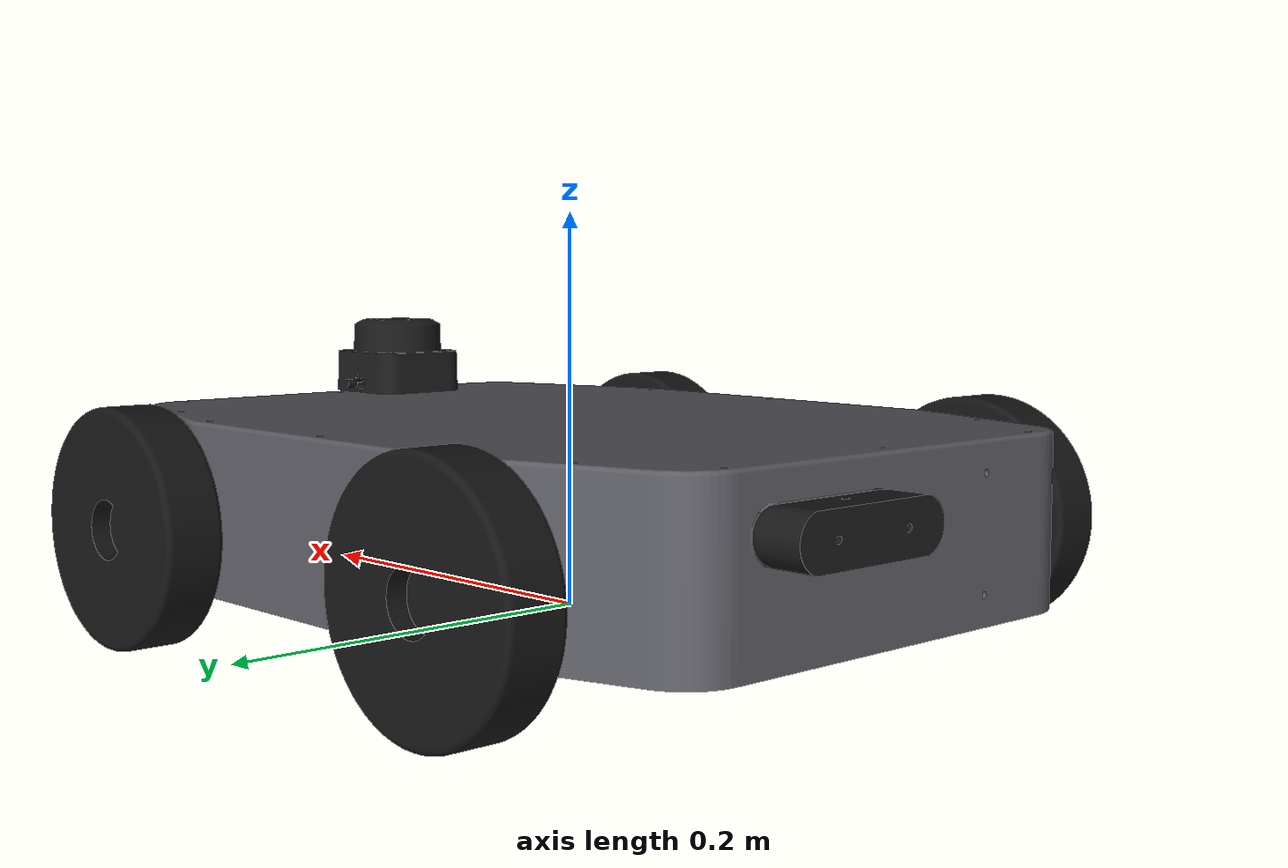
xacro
<?xml version="1.0"?>
<robot name="crawler" xmlns:xacro="http://www.ros.org/wiki/xacro">

  <xacro:include filename="$(find crawler_description)/urdf/crawler_gazebo.xacro" />
  <xacro:include filename="$(find crawler_description)/urdf/crawler_ros2_control.xacro" />

    <material name="body_grey">
    <color rgba="0.35 0.35 0.38 1.0"/>
  </material>
  <material name="wheel_black">
    <color rgba="0.08 0.08 0.08 1.0"/>
  </material>
  <material name="sensor_dark">
    <color rgba="0.1 0.1 0.1 1.0"/>
  </material>
  <material name="probe_orange">
    <color rgba="0.9 0.45 0.05 1.0"/>
  </material>

  <xacro:property name="wheel_radius" value="0.060"/>
  <xacro:property name="wheel_width"  value="0.030"/>
  <xacro:property name="body_x" value="0.420"/>
  <xacro:property name="body_y" value="0.320"/>
  <xacro:property name="body_z" value="0.075"/>

  <link name="base_footprint"/>

  <link name="base_link">
    <visual>
      <origin xyz="0 0 -0.005" rpy="-1.57 0 0"/>
      <geometry>
        <mesh filename="package://crawler_description/meshes/body.stl" scale="0.001 0.001 0.001"/>
      </geometry>
      <material name="body_grey"/>
    </visual>
    <collision>
      <origin xyz="0 0 0.005" rpy="0 0 0"/>
      <geometry>
        <box size="${body_x} ${body_y} ${body_z}"/>
      </geometry>
    </collision>
    <inertial>
      <mass value="6.0"/>
      <origin xyz="0 0 0.005" rpy="0 0 0"/>
      <inertia ixx="0.06" ixy="0.0" ixz="0.0" iyy="0.10" iyz="0.0" izz="0.14"/>
    </inertial>
  </link>

  <link name="front_right_wheel_link">
    <visual>
      <origin xyz="0 0 0" rpy="0 0 0"/>
      <geometry>
        <mesh filename="package://crawler_description/meshes/wheel.stl" scale="0.001 0.001 0.001"/>
      </geometry>
      <material name="wheel_black"/>
    </visual>
    <collision>
      <origin xyz="0 0 0" rpy="1.57 0 0"/>
      <geometry>
        <cylinder radius="${wheel_radius}" length="${wheel_width}"/>
      </geometry>
    </collision>
    <inertial>
      <mass value="0.8"/>
      <origin xyz="0 0 0" rpy="0 0 0"/>
      <inertia ixx="0.0009" ixy="0.0" ixz="0.0" iyy="0.0009" iyz="0.0" izz="0.0014"/>
    </inertial>
  </link>

  <link name="front_left_wheel_link">
    <visual>
      <origin xyz="0 0 0" rpy="0 0 0"/>
      <geometry>
        <mesh filename="package://crawler_description/meshes/wheel.stl" scale="0.001 0.001 0.001"/>
      </geometry>
      <material name="wheel_black"/>
    </visual>
    <collision>
      <origin xyz="0 0 0" rpy="1.57 0 0"/>
      <geometry>
        <cylinder radius="${wheel_radius}" length="${wheel_width}"/>
      </geometry>
    </collision>
    <inertial>
      <mass value="0.8"/>
      <origin xyz="0 0 0" rpy="0 0 0"/>
      <inertia ixx="0.0009" ixy="0.0" ixz="0.0" iyy="0.0009" iyz="0.0" izz="0.0014"/>
    </inertial>
  </link>

  <link name="rear_right_wheel_link">
    <visual>
      <origin xyz="0 0 0" rpy="0 0 0"/>
      <geometry>
        <mesh filename="package://crawler_description/meshes/wheel.stl" scale="0.001 0.001 0.001"/>
      </geometry>
      <material name="wheel_black"/>
    </visual>
    <collision>
      <origin xyz="0 0 0" rpy="1.57 0 0"/>
      <geometry>
        <cylinder radius="${wheel_radius}" length="${wheel_width}"/>
      </geometry>
    </collision>
    <inertial>
      <mass value="0.8"/>
      <origin xyz="0 0 0" rpy="0 0 0"/>
      <inertia ixx="0.0009" ixy="0.0" ixz="0.0" iyy="0.0009" iyz="0.0" izz="0.0014"/>
    </inertial>
  </link>

  <link name="rear_left_wheel_link">
    <visual>
      <origin xyz="0 0 0" rpy="0 0 0"/>
      <geometry>
        <mesh filename="package://crawler_description/meshes/wheel.stl" scale="0.001 0.001 0.001"/>
      </geometry>
      <material name="wheel_black"/>
    </visual>
    <collision>
      <origin xyz="0 0 0" rpy="1.57 0 0"/>
      <geometry>
        <cylinder radius="${wheel_radius}" length="${wheel_width}"/>
      </geometry>
    </collision>
    <inertial>
      <mass value="0.8"/>
      <origin xyz="0 0 0" rpy="0 0 0"/>
      <inertia ixx="0.0009" ixy="0.0" ixz="0.0" iyy="0.0009" iyz="0.0" izz="0.0014"/>
    </inertial>
  </link>

  <link name="camera_front_link">
    <visual>
      <origin xyz="0 0 0" rpy="1.57 0 1.57"/>
      <geometry>
        <mesh filename="package://crawler_description/meshes/camera.stl" scale="0.001 0.001 0.001"/>
      </geometry>
      <material name="sensor_dark"/>
    </visual>
    <collision>
      <geometry>
        <box size="0.090 0.025 0.028"/>
      </geometry>
    </collision>
    <inertial>
      <mass value="0.072"/>
      <inertia ixx="0.00001" ixy="0.0" ixz="0.0" iyy="0.00003" iyz="0.0" izz="0.00003"/>
    </inertial>
  </link>

<link name="camera_back_link">
    <visual>
      <origin xyz="0 0 0" rpy="-1.57 0 1.57"/>
      <geometry>
        <mesh filename="package://crawler_description/meshes/camera.stl" scale="0.001 0.001 0.001"/>
      </geometry>
      <material name="sensor_dark"/>
    </visual>
    <collision>
      <geometry>
        <box size="0.090 0.025 0.028"/>
      </geometry>
    </collision>
    <inertial>
      <mass value="0.072"/>
      <inertia ixx="0.00001" ixy="0.0" ixz="0.0" iyy="0.00003" iyz="0.0" izz="0.00003"/>
    </inertial>
</link>

  <link name="lidar_link">
    <visual>
    <origin xyz="0 -0.02065 0.0046" rpy="1.57 0 0"/>
      <geometry>
        <mesh filename="package://crawler_description/meshes/lidar.stl" scale="0.001 0.001 0.001"/>
      </geometry>
      <material name="sensor_dark"/>
    </visual>
    <collision>
      <geometry>
        <box size="0.0556 0.0413 0.0648"/>
      </geometry>
    </collision>
    <inertial>
      <mass value="0.030"/>
      <inertia ixx="0.000005" ixy="0.0" ixz="0.0" iyy="0.000005" iyz="0.0" izz="0.000005"/>
    </inertial>
  </link>

  <link name="probe_holder_link">
    <visual>
      <geometry>
        <mesh filename="package://crawler_description/meshes/probe.stl" scale="0.001 0.001 0.001"/>
      </geometry>
      <material name="probe_orange"/>
    </visual>
    <collision>
      <geometry>
        <box size="0.104 0.071 0.0845"/>
      </geometry>
    </collision>
    <inertial>
      <mass value="0.150"/>
      <inertia ixx="0.00003" ixy="0.0" ixz="0.0" iyy="0.00004" iyz="0.0" izz="0.00004"/>
    </inertial>
  </link>

  <joint name="base_footprint_joint" type="fixed">
    <parent link="base_footprint"/>
    <child link="base_link"/>
    <origin xyz="0 0 ${wheel_radius}" rpy="0 0 0"/>
  </joint>

  <joint name="front_right_wheel_joint" type="continuous">
    <parent link="base_link"/>
    <child link="front_right_wheel_link"/>
    <origin xyz="0.122 0.165 -0.015" rpy="0 0 0"/>
    <axis xyz="0 1 0"/>
    <dynamics damping="0.2" friction="0.1"/>
    <limit effort="10" velocity="2.0"/>
  </joint>

  <joint name="front_left_wheel_joint" type="continuous">
    <parent link="base_link"/>
    <child link="front_left_wheel_link"/>
    <origin xyz="0.122 -0.195 -0.015" rpy="0 0 0"/>
    <axis xyz="0 1 0"/>
    <dynamics damping="0.2" friction="0.1"/>
    <limit effort="10" velocity="2.0"/>
  </joint>

  <joint name="rear_right_wheel_joint" type="continuous">
    <parent link="base_link"/>
    <child link="rear_right_wheel_link"/>
    <origin xyz="-0.122 0.165 -0.015" rpy="0 0 0"/>
    <axis xyz="0 1 0"/>
    <dynamics damping="0.2" friction="0.1"/>
    <limit effort="10" velocity="2.0"/>
  </joint>

  <joint name="rear_left_wheel_joint" type="continuous">
    <parent link="base_link"/>
    <child link="rear_left_wheel_link"/>
    <origin xyz="-0.122 -0.195 -0.015" rpy="0 0 0"/>
    <axis xyz="0 1 0"/>
    <dynamics damping="0.2" friction="0.1"/>
    <limit effort="10" velocity="2.0"/>
  </joint>

  <joint name="camera_front_joint" type="fixed">
    <parent link="base_link"/>
    <child link="camera_front_link"/>
    <origin xyz="0.210 0.0514 0.01" rpy="0 0 0"/>
  </joint>

  <joint name="camera_back_joint" type="fixed">
    <parent link="base_link"/>
    <child link="camera_back_link"/>
    <origin xyz="-0.210 0.0513 0.01" rpy="0 0 3.14"/>
  </joint>

  <joint name="lidar_joint" type="fixed">
    <parent link="base_link"/>
    <child link="lidar_link"/>
    <origin xyz="0.173 0.0 0.035" rpy="0 0 0"/>
  </joint>

  <joint name="probe_holder_joint" type="fixed">
    <parent link="base_link"/>
    <child link="probe_holder_link"/>
    <origin xyz="0.27 -0.0595 0.02" rpy="-1.57 0 1.57"/>
  </joint>

</robot>
